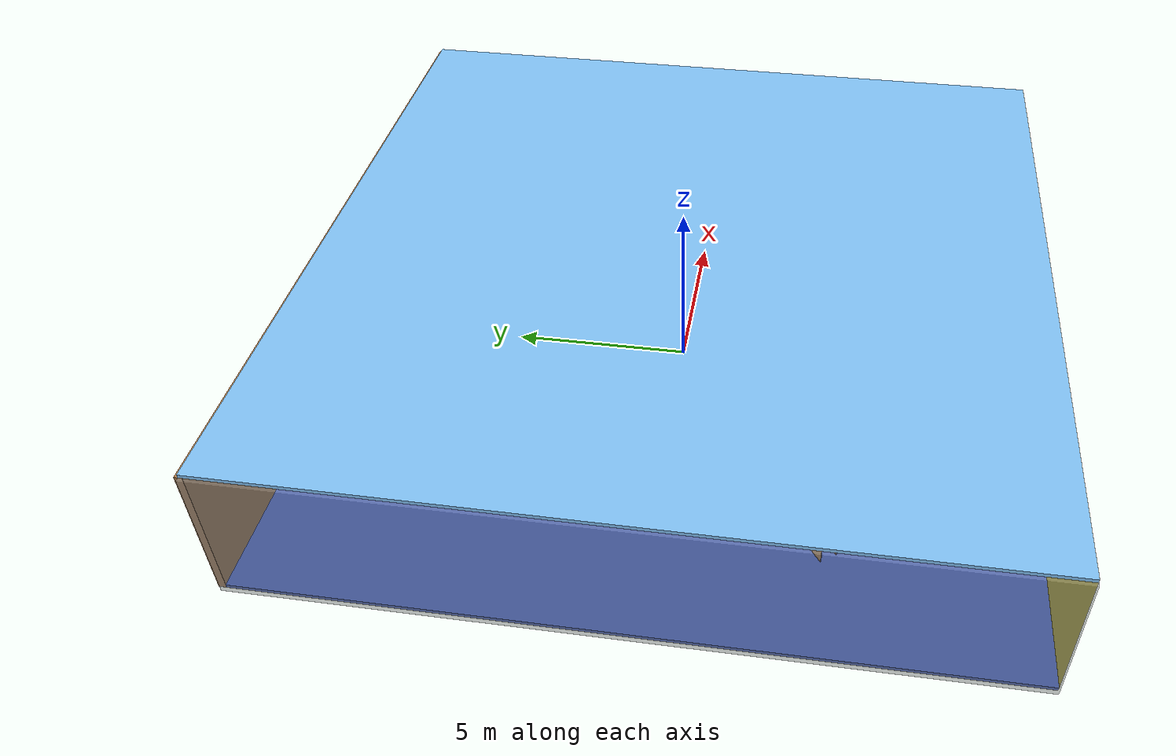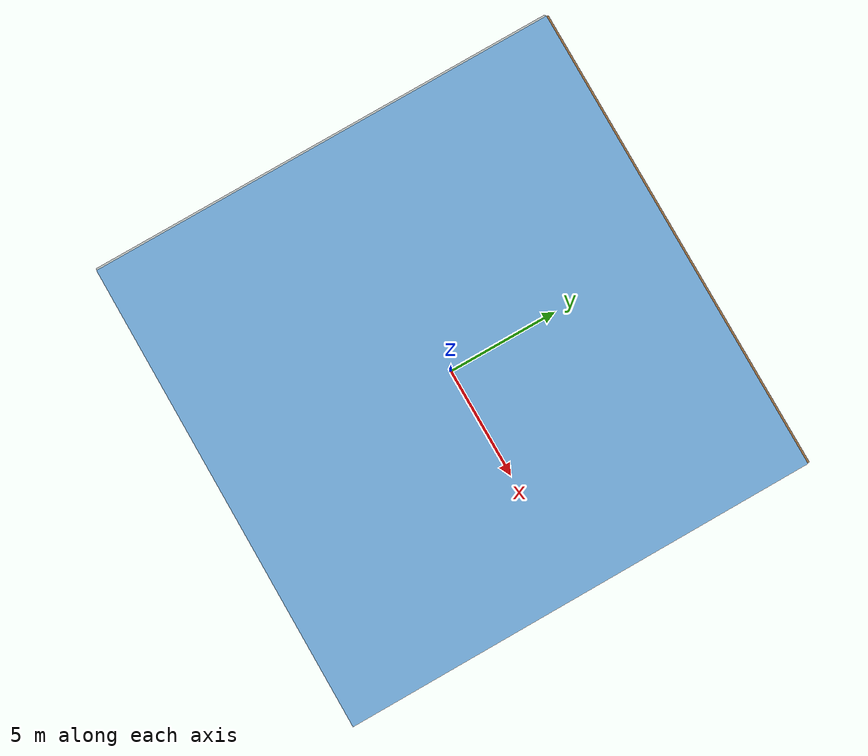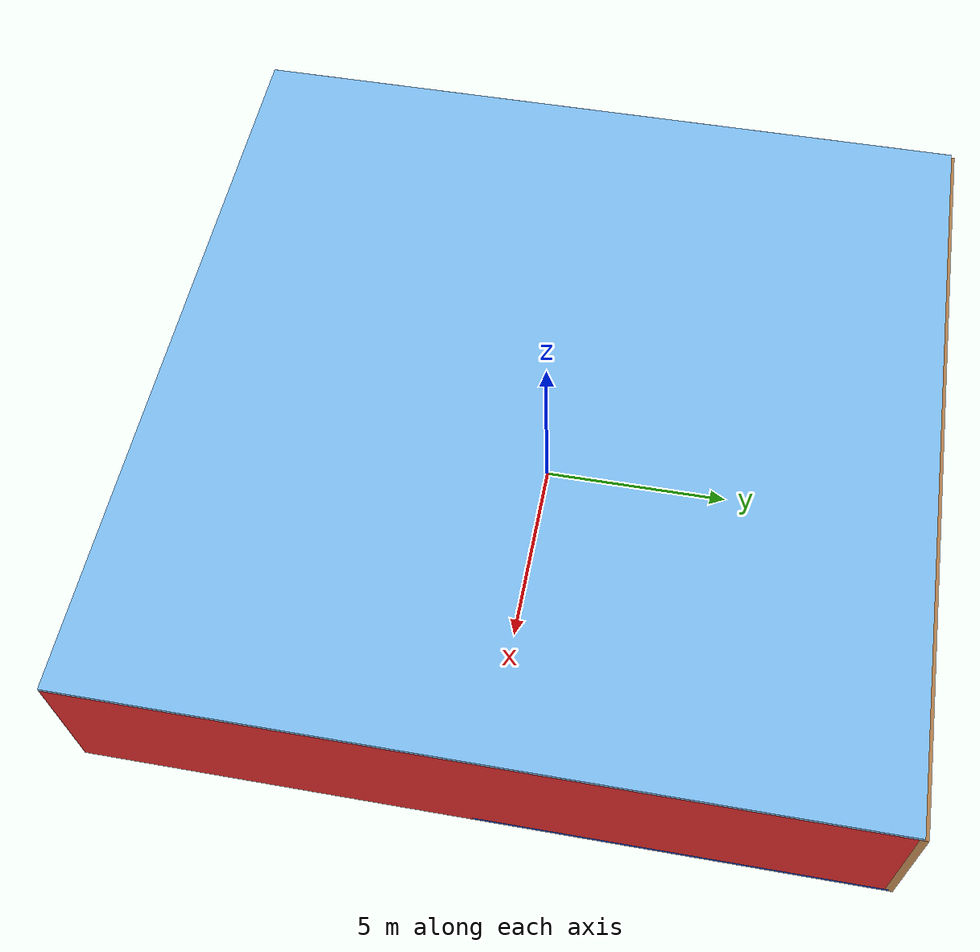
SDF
<sdf version="1.4">
 <world name="default">
  <physics type="ode">
   <max_step_size>0.001</max_step_size>
   <real_time_factor>1</real_time_factor>
   <real_time_update_rate>1000</real_time_update_rate>
   <gravity>0 0 -9.8</gravity>
  </physics>
  <scene><ambient>0.4 0.4 0.4 1</ambient><background>0.7 0.7 0.7 1</background><shadows>1</shadows></scene>
  <model name="Surrounding">
   <static>1</static>
   <link name="Ceiling">
    <collision name="Ceiling_Collision"><geometry><box><size>20 20 0.1</size></box></geometry></collision>
    <visual name="Ceiling_Visual">
     <geometry><box><size>20 20 0.1</size></box></geometry>
     <material>
      <script><uri>file://media/materials/scripts/gazebo.material</uri><name>Gazebo/SkyBlue</name></script>
     </material>
    </visual>
    <pose>0 0 4.05 0 0 0</pose>
   </link>
   <link name="Wall_South">
    <collision name="Wall_South_Collision">
     <geometry><box><size>20 0 4</size></box></geometry>
     <pose>0 0 2 0 -0 0</pose>
    </collision>
    <visual name="Wall_South_Visual">
     <pose>0 0 2 0 -0 0</pose>
     <geometry><box><size>20 0 4</size></box></geometry>
     <material>
      <script><uri>file://media/materials/scripts/gazebo.material</uri><name>Gazebo/YellowGlow</name></script>
     </material>
    </visual>
    <velocity_decay><linear>0</linear><angular>0</angular></velocity_decay>
    <pose>0 -10 0 0 -0 0</pose>
   </link>
   <link name="Wall_East">
    <collision name="Wall_21_Collision">
     <geometry><box><size>20 0 4</size></box></geometry>
     <pose>0 0 2 0 -0 0</pose>
    </collision>
    <visual name="Wall_21_Visual">
     <pose>0 0 2 0 -0 0</pose>
     <geometry><box><size>20 0 4</size></box></geometry>
     <material>
      <script><uri>file://media/materials/scripts/gazebo.material</uri><name>Gazebo/Red</name></script>
     </material>
    </visual>
    <velocity_decay><linear>0</linear><angular>0</angular></velocity_decay>
    <pose>10 0 0 0 -0 1.5708</pose>
   </link>
   <link name="Wall_North">
    <collision name="Wall_22_Collision">
     <geometry><box><size>20 0.2 4</size></box></geometry>
     <pose>0 0 2 0 -0 0</pose>
    </collision>
    <visual name="Wall_22_Visual">
     <pose>0 0 2 0 -0 0</pose>
     <geometry><box><size>20 0.2 4</size></box></geometry>
     <material>
      <script><uri>file://media/materials/scripts/gazebo.material</uri><name>Gazebo/WoodFloor</name></script>
     </material>
    </visual>
    <velocity_decay><linear>0</linear><angular>0</angular></velocity_decay>
    <pose>0 10 0 0 -0 0</pose>
   </link>
   <link name="Wall_West">
    <collision name="Wall_23_Collision">
     <geometry><box><size>20 0.2 4</size></box></geometry>
     <pose>0 0 2 0 -0 0</pose>
    </collision>
    <visual name="Wall_23_Visual">
     <pose>0 0 2 0 -0 0</pose>
     <geometry><box><size>20 0.2 4</size></box></geometry>
     <material>
      <script><uri>file://media/materials/scripts/gazebo.material</uri><name>Gazebo/GreyTransparent</name></script>
     </material>
    </visual>
    <velocity_decay><linear>0</linear><angular>0</angular></velocity_decay>
    <pose>-10 0 0 0 0 -1.5708</pose>
   </link>
   <link name="Ground_link">
    <collision name="collision">
     <pose>0 0 .05 0 -0 0</pose>
     <geometry><box><size>20 20 0.1</size></box></geometry>
    </collision>
    <visual name="visual">
     <pose>0 0 .05 0 -0 0</pose>
     <geometry><box><size>20 20 0.1</size></box></geometry>
     <material>
      <script><uri>file://media/materials/scripts/gazebo.material</uri><name>Gazebo/BlueLaser</name></script>
     </material>
    </visual>
   </link>
   <static>1</static>
  </model>
  <spherical_coordinates>
   <surface_model>EARTH_WGS84</surface_model>
   <latitude_deg>0</latitude_deg>
   <longitude_deg>0</longitude_deg>
   <elevation>0</elevation>
   <heading_deg>0</heading_deg>
  </spherical_coordinates>
  <light name="lightball_0" type="diffuse">
   <diffuse>0.8 0.8 0.8 1</diffuse>
   <specular>0.2 0.2 0.2 1</specular>
   <attenuation>
    <range>100</range>
    <constant>0.7</constant>
    <linear>0.01</linear>
    <quadratic>0.001</quadratic>
   </attenuation>
   <direction>-0.5 0.1 -0.9</direction>
   <pose>-2.02965007295 -8.31323190113 3.01740485226 0 0 0</pose>
  </light>
  <light name="lightball_1" type="diffuse">
   <diffuse>0.8 0.8 0.8 1</diffuse>
   <specular>0.2 0.2 0.2 1</specular>
   <attenuation>
    <range>100</range>
    <constant>0.7</constant>
    <linear>0.01</linear>
    <quadratic>0.001</quadratic>
   </attenuation>
   <direction>-0.5 0.1 -0.9</direction>
   <pose>9.63221321531 8.82150267972 2.97560283841 0 0 0</pose>
  </light>
  <light name="lightball_2" type="diffuse">
   <diffuse>0.8 0.8 0.8 1</diffuse>
   <specular>0.2 0.2 0.2 1</specular>
   <attenuation>
    <range>100</range>
    <constant>0.7</constant>
    <linear>0.01</linear>
    <quadratic>0.001</quadratic>
   </attenuation>
   <direction>-0.5 0.1 -0.9</direction>
   <pose>-4.75407320308 8.81105241208 1.15527636235 0 0 0</pose>
  </light>
  <light name="lightball_3" type="diffuse">
   <diffuse>0.8 0.8 0.8 1</diffuse>
   <specular>0.2 0.2 0.2 1</specular>
   <attenuation>
    <range>100</range>
    <constant>0.7</constant>
    <linear>0.01</linear>
    <quadratic>0.001</quadratic>
   </attenuation>
   <direction>-0.5 0.1 -0.9</direction>
   <pose>-4.78456660529 -6.24166667554 1.81869605912 0 0 0</pose>
  </light>
  <light name="lightball_4" type="diffuse">
   <diffuse>0.8 0.8 0.8 1</diffuse>
   <specular>0.2 0.2 0.2 1</specular>
   <attenuation>
    <range>100</range>
    <constant>0.7</constant>
    <linear>0.01</linear>
    <quadratic>0.001</quadratic>
   </attenuation>
   <direction>-0.5 0.1 -0.9</direction>
   <pose>9.64519273857 -5.5907346559 1.68009673549 0 0 0</pose>
  </light>
  <light name="lightball_5" type="diffuse">
   <diffuse>0.8 0.8 0.8 1</diffuse>
   <specular>0.2 0.2 0.2 1</specular>
   <attenuation>
    <range>100</range>
    <constant>0.7</constant>
    <linear>0.01</linear>
    <quadratic>0.001</quadratic>
   </attenuation>
   <direction>-0.5 0.1 -0.9</direction>
   <pose>-4.77486012701 -7.24570935565 2.22687831458 0 0 0</pose>
  </light>
  <light name="lightball_6" type="diffuse">
   <diffuse>0.8 0.8 0.8 1</diffuse>
   <specular>0.2 0.2 0.2 1</specular>
   <attenuation>
    <range>100</range>
    <constant>0.7</constant>
    <linear>0.01</linear>
    <quadratic>0.001</quadratic>
   </attenuation>
   <direction>-0.5 0.1 -0.9</direction>
   <pose>-4.1884894989 1.63724473847 2.5940894124 0 0 0</pose>
  </light>
  <light name="lightball_7" type="diffuse">
   <diffuse>0.8 0.8 0.8 1</diffuse>
   <specular>0.2 0.2 0.2 1</specular>
   <attenuation>
    <range>100</range>
    <constant>0.7</constant>
    <linear>0.01</linear>
    <quadratic>0.001</quadratic>
   </attenuation>
   <direction>-0.5 0.1 -0.9</direction>
   <pose>2.10761257781 3.73511120759 3.36242808669 0 0 0</pose>
  </light>
  <light name="lightball_8" type="diffuse">
   <diffuse>0.8 0.8 0.8 1</diffuse>
   <specular>0.2 0.2 0.2 1</specular>
   <attenuation>
    <range>100</range>
    <constant>0.7</constant>
    <linear>0.01</linear>
    <quadratic>0.001</quadratic>
   </attenuation>
   <direction>-0.5 0.1 -0.9</direction>
   <pose>-2.90609963651 1.66999918099 2.91634063746 0 0 0</pose>
  </light>
  <light name="lightball_9" type="diffuse">
   <diffuse>0.8 0.8 0.8 1</diffuse>
   <specular>0.2 0.2 0.2 1</specular>
   <attenuation>
    <range>100</range>
    <constant>0.7</constant>
    <linear>0.01</linear>
    <quadratic>0.001</quadratic>
   </attenuation>
   <direction>-0.5 0.1 -0.9</direction>
   <pose>-3.38956546773 4.46582453528 2.41247764232 0 0 0</pose>
  </light>
  <include><uri>model://cabinet</uri><pose>-6.93053559167 -4.52580082309 0 0 0 0.630007731021</pose></include>
  <include><uri>model://cabinet</uri><pose>-5.14288031157 7.83774608984 0 0 0 0.0732429208342</pose></include>
  <include><uri>model://cabinet</uri><pose>-2.2017129266 -4.33038138542 0 0 0 2.6817059005</pose></include>
  <include>
   <uri>model://construction_cone</uri>
   <pose>1.10860931277 -7.67473255856 0 0 0 1.86272597338</pose>
  </include>
  <include><uri>model://table</uri><pose>1.93316509414 -4.24939658856 0 0 0 1.41444596638</pose></include>
  <include>
   <uri>model://construction_cone</uri>
   <pose>3.8222242349 -7.57341728534 0 0 0 0.59345289964</pose>
  </include>
  <include><uri>model://table</uri><pose>4.23423396281 -5.00008464777 0 0 0 0.045982019344</pose></include>
  <include><uri>model://table</uri><pose>7.32814067767 8.00266022327 0 0 0 1.44366964239</pose></include>
 </world>
</sdf>

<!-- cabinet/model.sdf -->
<sdf version="1.5">
  <model name="cabinet">
    <static>true</static>
    <link name="cabinet_bottom_plate">
      <inertial>
        <pose>0 0 -1 0 0 0</pose>
        <inertia>
          <ixx>2.050000</ixx>
          <ixy>0</ixy>
          <ixz>0</ixz>
          <iyy>2.050000</iyy>
          <iyz>0</iyz>
          <izz>2.050000</izz>
        </inertia>
        <mass>25.000000</mass>
      </inertial>
      <collision name="cabinet_bottom_plate_geom">
        <pose>0 0 0.010000 0 0 0</pose>
        <geometry>
          <box>
            <size>0.450000 0.450000 0.020000</size>
          </box>
        </geometry>
      </collision>
      <visual name="cabinet_bottom_plate_geom_visual">
        <pose>0 0 0.010000 0 0 0</pose>
        <geometry>
          <box>
            <size>0.450000 0.450000 0.020000</size>
          </box>
        </geometry>
        <material>
          <script>
            <uri>model://media/materials/scripts/gazebo.material</uri>
            <name>Gazebo/Wood</name>
          </script>
        </material>
      </visual>
      <collision name="cabinet_bottom_plate_geom_cabinet_back_plate">
        <pose>0.235000 0 0.510000 0 0 0</pose>
        <geometry>
          <box>
            <size>0.020000 0.450000 1.020000</size>
          </box>
        </geometry>
      </collision>
      <visual name="cabinet_bottom_plate_geom_cabinet_back_plate_visual">
        <pose>0.235000 0 0.510000 0 0 0</pose>
        <geometry>
          <box>
            <size>0.020000 0.450000 1.020000</size>
          </box>
        </geometry>
        <material>
          <script>
            <uri>model://media/materials/scripts/gazebo.material</uri>
            <name>Gazebo/Wood</name>
          </script>
        </material>
      </visual>
      <collision name="cabinet_bottom_plate_geom_cabinet_left_plate">
        <pose>0 0.235000 0.510000 0 0 0</pose>
        <geometry>
          <box>
            <size>0.450000 0.020000 1.020000</size>
          </box>
        </geometry>
      </collision>
      <visual name="cabinet_bottom_plate_geom_cabinet_left_plate_visual">
        <pose>0 0.235000 0.510000 0 0 0</pose>
        <geometry>
          <box>
            <size>0.450000 0.020000 1.020000</size>
          </box>
        </geometry>
        <material>
          <script>
            <uri>model://media/materials/scripts/gazebo.material</uri>
            <name>Gazebo/Wood</name>
          </script>
        </material>
      </visual>
      <collision name="cabinet_bottom_plate_geom_cabinet_middle_plate">
        <pose>0 0 0.510000 0 0 0</pose>
        <geometry>
          <box>
            <size>0.450000 0.450000 0.020000</size>
          </box>
        </geometry>
      </collision>
      <visual name="cabinet_bottom_plate_geom_cabinet_middle_plate_visual">
        <pose>0 0 0.510000 0 0 0</pose>
        <geometry>
          <box>
            <size>0.450000 0.450000 0.020000</size>
          </box>
        </geometry>
        <material>
          <script>
            <uri>model://media/materials/scripts/gazebo.material</uri>
            <name>Gazebo/Wood</name>
          </script>
        </material>
      </visual>
      <collision name="cabinet_bottom_plate_geom_cabinet_right_plate">
        <pose>0 -0.235000 0.510000 0 0 0</pose>
        <geometry>
          <box>
            <size>0.450000 0.020000 1.020000</size>
          </box>
        </geometry>
      </collision>
      <visual name="cabinet_bottom_plate_geom_cabinet_right_plate_visual">
        <pose>0 -0.235000 0.510000 0 0 0</pose>
        <geometry>
          <box>
            <size>0.450000 0.020000 1.020000</size>
          </box>
        </geometry>
        <material>
          <script>
            <uri>model://media/materials/scripts/gazebo.material</uri>
            <name>Gazebo/Wood</name>
          </script>
        </material>
      </visual>
      <collision name="cabinet_bottom_plate_geom_cabinet_top_plate">
        <pose>0 0 1.010000 0 0 0</pose>
        <geometry>
          <box>
            <size>0.450000 0.450000 0.020000</size>
          </box>
        </geometry>
      </collision>
      <visual name="cabinet_bottom_plate_geom_cabinet_top_plate_visual">
        <pose>0 0 1.010000 0 0 0</pose>
        <geometry>
          <box>
            <size>0.450000 0.450000 0.020000</size>
          </box>
        </geometry>
        <material>
          <script>
            <uri>model://media/materials/scripts/gazebo.material</uri>
            <name>Gazebo/Wood</name>
          </script>
        </material>
      </visual>
    </link>
  </model>
</sdf>

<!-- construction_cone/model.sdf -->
<sdf version="1.5">
  <model name="Construction Cone">
    <link name="link">
      <collision name="collision">
        <geometry>
          <mesh>
            <scale>10 10 10</scale>
            <uri>file://isr-testbed/construction_cone/meshes/construction_cone.dae</uri>
          </mesh>
        </geometry>
      </collision>
      <visual name="visual">
        <geometry>
          <mesh>
            <scale>10 10 10</scale>
            <uri>file://isr-testbed/construction_cone/meshes/construction_cone.dae</uri>
          </mesh>
        </geometry>
      </visual>
    </link>
  </model>
</sdf>

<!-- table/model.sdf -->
<sdf version="1.5">
  <model name="table">
    <static>true</static>
    <link name="link">
      <collision name="surface">
        <pose>0 0 1.0 0 0 0</pose>
        <geometry>
          <box>
            <size>1.5 0.8 0.03</size>
          </box>
        </geometry>
        <surface>
          <friction>
            <ode>
              <mu>0.6</mu>
              <mu2>0.6</mu2>
            </ode>
          </friction>
        </surface>
      </collision>
      <visual name="visual1">
        <pose>0 0 1.0 0 0 0</pose>
        <geometry>
          <box>
            <size>1.5 0.8 0.03</size>
          </box>
        </geometry>
        <material>
          <script>
            <uri>model://media/materials/scripts/gazebo.material</uri>
            <name>Gazebo/Wood</name>
          </script>
        </material>
      </visual>
      <collision name="front_left_leg">
        <pose>0.68 0.38 0.5 0 0 0</pose>
        <geometry>
          <cylinder>
            <radius>0.02</radius>
            <length>1.0</length>
          </cylinder>
        </geometry>
      </collision>
      <visual name="front_left_leg">
        <pose>0.68 0.38 0.5 0 0 0</pose>
        <geometry>
          <cylinder>
            <radius>0.02</radius>
            <length>1.0</length>
          </cylinder>
        </geometry>
        <material>
          <script>
            <uri>model://media/materials/scripts/gazebo.material</uri>
            <name>Gazebo/Grey</name>
          </script>
        </material>
      </visual>
      <collision name="front_right_leg">
        <pose>0.68 -0.38 0.5 0 0 0</pose>
        <geometry>
          <cylinder>
            <radius>0.02</radius>
            <length>1.0</length>
          </cylinder>
        </geometry>
      </collision>
      <visual name="front_right_leg">
        <pose>0.68 -0.38 0.5 0 0 0</pose>
        <geometry>
          <cylinder>
            <radius>0.02</radius>
            <length>1.0</length>
          </cylinder>
        </geometry>
        <material>
          <script>
            <uri>model://media/materials/scripts/gazebo.material</uri>
            <name>Gazebo/Grey</name>
          </script>
        </material>
      </visual>
      <collision name="back_right_leg">
        <pose>-0.68 -0.38 0.5 0 0 0</pose>
        <geometry>
          <cylinder>
            <radius>0.02</radius>
            <length>1.0</length>
          </cylinder>
        </geometry>
      </collision>
      <visual name="back_right_leg">
        <pose>-0.68 -0.38 0.5 0 0 0</pose>
        <geometry>
          <cylinder>
            <radius>0.02</radius>
            <length>1.0</length>
          </cylinder>
        </geometry>
        <material>
          <script>
            <uri>model://media/materials/scripts/gazebo.material</uri>
            <name>Gazebo/Grey</name>
          </script>
        </material>
      </visual>
      <collision name="back_left_leg">
        <pose>-0.68 0.38 0.5 0 0 0</pose>
        <geometry>
          <cylinder>
            <radius>0.02</radius>
            <length>1.0</length>
          </cylinder>
        </geometry>
      </collision>
      <visual name="back_left_leg">
        <pose>-0.68 0.38 0.5 0 0 0</pose>
        <geometry>
          <cylinder>
            <radius>0.02</radius>
            <length>1.0</length>
          </cylinder>
        </geometry>
        <material>
          <script>
            <uri>model://media/materials/scripts/gazebo.material</uri>
            <name>Gazebo/Grey</name>
          </script>
        </material>
      </visual>
    </link>
  </model>
</sdf>
